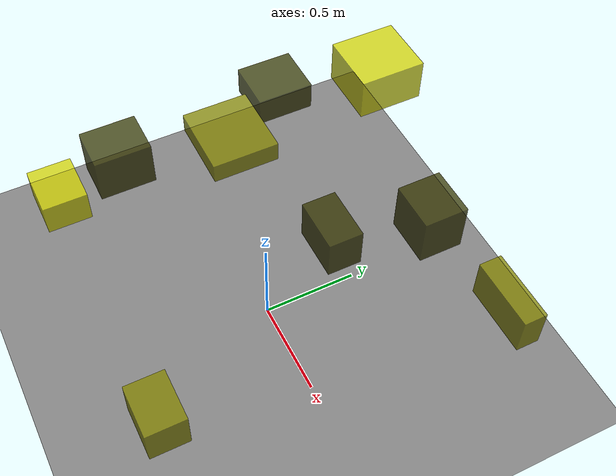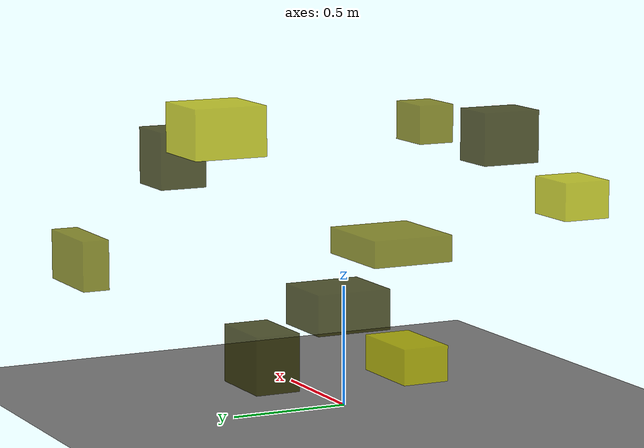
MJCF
<?xml version="1.0"?>
<mujoco model="obstacle_scene">
  <compiler angle="radian" coordinate="local"/>
  <option timestep="0.001" gravity="0 0 -9.81"/>

  <asset>
    <material name="obstacle_mat" rgba="0.8 0.8 0.0 0.8"/>
    <material name="ground_mat" rgba="0.5 0.5 0.5 1"/>
  </asset>

  <worldbody>
    <!-- Ground plane -->
    <geom name="ground" type="plane" size="3 3 0.1" material="ground_mat"/>

    <!-- Obstacles -->
    <body name="obstacle_0" pos="-0.319173 -0.542895 1.131348">
      <geom name="obs_0" type="box" size="0.100050 0.124584 0.107093" rgba="0.2 0.2 0.0 0.8"/>
    </body>
    <body name="obstacle_1" pos="0.840239 -0.831939 1.034019">
      <geom name="obs_1" type="box" size="0.111622 0.082915 0.085986" rgba="0.5 0.5 0.0 0.8"/>
    </body>
    <body name="obstacle_2" pos="-0.853336 0.168061 0.384904">
      <geom name="obs_2" type="box" size="0.157760 0.092672 0.069005" rgba="0.8 0.8 0.0 0.8"/>
    </body>
    <body name="obstacle_3" pos="0.477066 0.554208 1.010792">
      <geom name="obs_3" type="box" size="0.112876 0.100248 0.118746" rgba="0.2 0.2 0.0 0.8"/>
    </body>
    <body name="obstacle_4" pos="0.775632 0.853628 0.554937">
      <geom name="obs_4" type="box" size="0.179502 0.057673 0.105975" rgba="0.5 0.5 0.0 0.8"/>
    </body>
    <body name="obstacle_5" pos="-0.450963 -0.809666 0.878300">
      <geom name="obs_5" type="box" size="0.119623 0.101608 0.077633" rgba="0.8 0.8 0.0 0.8"/>
    </body>
    <body name="obstacle_6" pos="-0.889290 0.479814 0.618542">
      <geom name="obs_6" type="box" size="0.136825 0.148771 0.077052" rgba="0.2 0.2 0.0 0.8"/>
    </body>
    <body name="obstacle_7" pos="-0.536340 0.069049 0.766205">
      <geom name="obs_7" type="box" size="0.189362 0.168597 0.052407" rgba="0.5 0.5 0.0 0.8"/>
    </body>
    <body name="obstacle_8" pos="-0.224329 0.673131 1.218133">
      <geom name="obs_8" type="box" size="0.142780 0.150406 0.099663" rgba="0.8 0.8 0.0 0.8"/>
    </body>
    <body name="obstacle_9" pos="-0.121506 0.431985 0.266816">
      <geom name="obs_9" type="box" size="0.152147 0.094544 0.118415" rgba="0.2 0.2 0.0 0.8"/>
    </body>
  </worldbody>
</mujoco>
